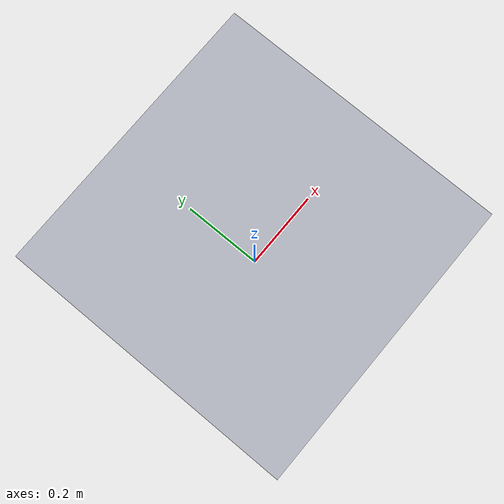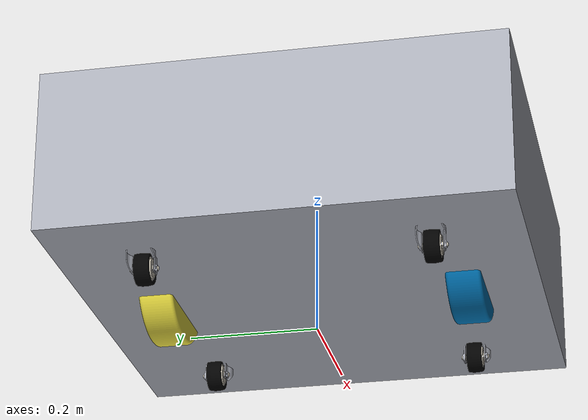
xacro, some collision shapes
<?xml version="1.0"?>
<robot xmlns:xacro="http://www.ros.org/wiki/xacro" >

    <material name="white">
        <color rgba = "1 1 1 1"/>
    </material>

    <material name="black">
        <color rgba = "0 0 0 1"/>
    </material>

    <material name="aluminium">
        <color rgba = "0.6627 0.6745 0.7137 1"/>
    </material>

    <material name="gray">
        <color rgba="0.5 0.5 0.5 1"/>
    </material>

    <!-- /////////////////////// BASE LINK /////////////////////// -->

    <link name="base_link">

    </link>

    <!-- /////////////////////// BASE FOOTPRINT LINK /////////////////////// -->

    <joint name="base_footprint_joint" type="fixed">
        <parent link="base_footprint"/>
        <child link="base_link"/>
        <origin xyz="0 0 0.1" rpy="0 0 0"/>
    </joint>

    <link name="base_footprint">

    </link>

    <!-- /////////////////////// CHASSIS LINK /////////////////////// -->

    <joint name="chassis_joint" type="fixed">
        <parent link="base_link"/>
        <child link="chassis"/>
        <origin xyz="0 0 0.0695"/>
    </joint>

    <link name="chassis">
        <visual>
            <origin xyz="0 0 0"/>
            <geometry>
                <mesh filename="package://main_system/mesh/Robot_Chassis.stl"/>
            </geometry>
            <material name="aluminium"/>
        </visual>
        <collision>
            <origin xyz="0 0 0"/>
            <geometry>
                <box size="0.7 0.7 0.255"/>
            </geometry>
        </collision>
    </link>

    <!-- /////////////////////// LEFT DRIVE WHEEL LINK /////////////////////// -->

    <joint name="left_drive_wheel_joint" type="continuous">
        <parent link="chassis"/>
        <child link="left_drive_wheel"/>
        <origin xyz="0 0.2375 -0.0695" rpy="0 0 -${pi/2}"/>
        <axis xyz="-1 0 0"/>
    </joint>

    <link name="left_drive_wheel">
        <visual>
            <geometry>
                <mesh filename="package://main_system/mesh/Wheels_8_inches.stl"/>
            </geometry>
        </visual>
    </link>

    <!-- /////////////////////// RIGHT DRIVE WHEEL LINK /////////////////////// -->

    <joint name="right_drive_wheel_joint" type="continuous">
        <parent link="chassis"/>
        <child link="right_drive_wheel"/>
        <origin xyz="0 -0.2375 -0.0695" rpy="0 0 ${pi/2}"/>
        <axis xyz="1 0 0"/>
    </joint>

    <link name="right_drive_wheel">
        <visual>
            <geometry>
                <mesh filename="package://main_system/mesh/Wheels_8_inches.stl"/>
            </geometry>
        </visual>
    </link>

    <!-- /////////////////////// CASTER WHEEL LINK /////////////////////// -->

    <!-- /////////////////////// CASTER BASE FRONT LEFT //////////////////-->
    <joint name="caster_base_joint_fl" type="fixed">
        <parent link="chassis"/>
        <child link="caster_base_fl"/>
        <origin xyz="0.24664 0.215 -0.1088" rpy="0 0 ${pi/2}"/>
        <axis xyz="0 0 -1"/>
    </joint>

    <link name="caster_base_fl">
        <visual>
            <geometry>
                <mesh filename="package://main_system/mesh/caster_base.stl"/>
            </geometry>
            <material name="aluminium"/>
        </visual>
    </link>

    <!-- /////////////////////// CASTER WHEEL FRONT LEFT //////////////////-->
    <joint name="caster_wheel_joint_fl" type="continuous">
        <parent link="caster_base_fl"/>
        <child link="caster_wheel_fl"/>
        <origin xyz="0 0.023 -0.037"/>
        <axis xyz="-1 0 0"/>
    </joint>

    <link name="caster_wheel_fl">
        <visual>
            <geometry>
                <mesh filename="package://main_system/mesh/2_inch_daster_wheel.dae"/>
            </geometry>
        </visual>
    </link>

<!-- /////////////////////// CASTER BASE FRONT RIGHT //////////////////-->
    <joint name="caster_base_joint_fr" type="fixed">
        <parent link="chassis"/>
        <child link="caster_base_fr"/>
        <origin xyz="0.24664 -0.215 -0.1088" rpy="0 0 ${pi/2}"/>
        <axis xyz="0 0 -1"/>
    </joint>

    <link name="caster_base_fr">
        <visual>
            <geometry>
                <mesh filename="package://main_system/mesh/caster_base.stl"/>
            </geometry>
            <material name="aluminium"/>
        </visual>
    </link>

<!-- /////////////////////// CASTER WHEEL FRONT RIGHT //////////////////-->
    <joint name="caster_wheel_joint_fr" type="continuous">
        <parent link="caster_base_fr"/>
        <child link="caster_wheel_fr"/>
        <origin xyz="0 0.023 -0.037"/>
        <axis xyz="1 0 0"/>
    </joint>

    <link name="caster_wheel_fr">
        <visual>
            <geometry>
                <mesh filename="package://main_system/mesh/2_inch_daster_wheel.dae"/>
            </geometry>
        </visual>
    </link>

<!-- /////////////////////// CASTER BASE REAR LEFT //////////////////-->
    <joint name="caster_base_joint_rl" type="fixed">
        <parent link="chassis"/>
        <child link="caster_base_rl"/>
        <origin xyz="-0.24664 0.215 -0.1088" rpy="0 0 -${pi/2}"/>
        <axis xyz="0 0 -1"/>
    </joint>

    <link name="caster_base_rl">
        <visual>
            <geometry>
                <mesh filename="package://main_system/mesh/caster_base.stl"/>
            </geometry>
            <material name="aluminium"/>
        </visual>
    </link>

<!-- /////////////////////// CASTER WHEEL REAR LEFT //////////////////-->
    <joint name="caster_wheel_joint_rl" type="continuous">
        <parent link="caster_base_rl"/>
        <child link="caster_wheel_rl"/>
        <origin xyz="0 0.023 -0.037"/>
        <axis xyz="-1 0 0"/>
    </joint>

    <link name="caster_wheel_rl">
        <visual>
            <geometry>
                <mesh filename="package://main_system/mesh/2_inch_daster_wheel.dae"/>
            </geometry>
        </visual>
    </link>

<!-- /////////////////////// CASTER BASE REAR RIGHT //////////////////-->
    <joint name="caster_base_joint_rr" type="fixed">
        <parent link="chassis"/>
        <child link="caster_base_rr"/>
        <origin xyz="-0.24664 -0.215 -0.1088" rpy="0 0 -${pi/2}"/>
        <axis xyz="0 0 -1"/>
    </joint>

    <link name="caster_base_rr">
        <visual>
            <geometry>
                <mesh filename="package://main_system/mesh/caster_base.stl"/>
            </geometry>
            <material name="aluminium"/>
        </visual>
    </link>

<!-- /////////////////////// CASTER WHEEL REAR RIGHT //////////////////-->
    <joint name="caster_wheel_joint_rr" type="continuous">
        <parent link="caster_base_rr"/>
        <child link="caster_wheel_rr"/>
        <origin xyz="0 0.023 -0.037"/>
        <axis xyz="1 0 0"/>
    </joint>

    <link name="caster_wheel_rr">
        <visual>
            <geometry>
                <mesh filename="package://main_system/mesh/2_inch_daster_wheel.dae"/>
            </geometry>
        </visual>
    </link>

<!-- /////////////////////// LIDAR //////////////////-->
    <joint name="lidar_base_joint" type="fixed">
        <parent link="chassis"/>
        <child link="lidar_base"/>
        <origin xyz="0 0 0.0635" rpy="0 0 0"/>
    </joint>

    <link name="lidar_base">
        <visual>
            <origin xyz="0 0 0" rpy="0 0 0"/>
            <geometry>
                <mesh filename="package://main_system/mesh/Lidar_base.stl"/>
            </geometry>
            <material name="black"/>
        </visual>
    </link>

</robot>
